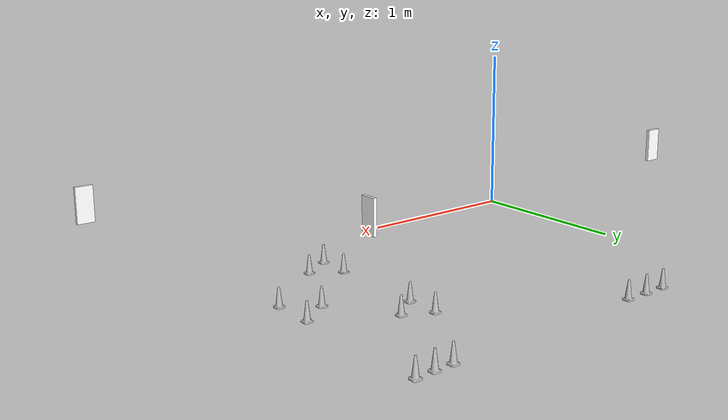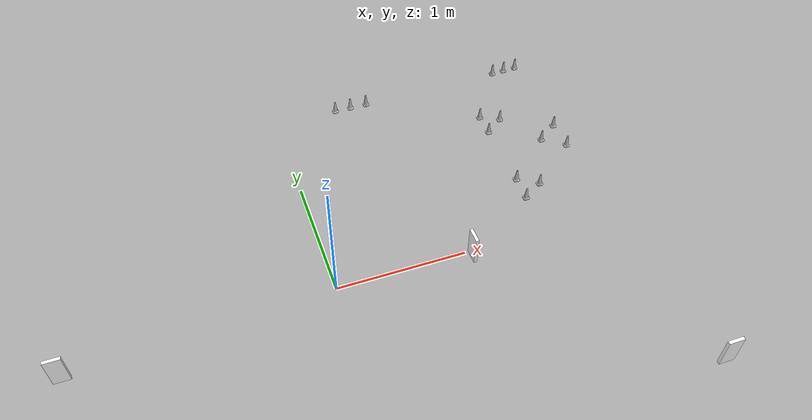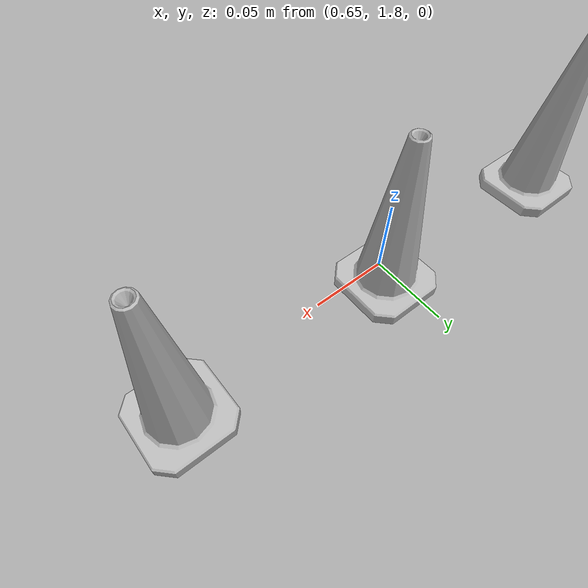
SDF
<sdf version="1.10">
 <world name="course">
  <physics name="5ms" type="ignored">
   <max_step_size>0.005</max_step_size>
   <real_time_factor>1</real_time_factor>
   <collision_detector>bullet</collision_detector>
  </physics>
  <plugin filename="gz-sim-physics-system" name="gz::sim::systems::Physics"/>
  <plugin filename="gz-sim-user-commands-system" name="gz::sim::systems::UserCommands"/>
  <plugin filename="gz-sim-scene-broadcaster-system" name="gz::sim::systems::SceneBroadcaster"/>
  <scene>
   <ambient>0 0 0 1</ambient>
   <shadows>false</shadows>
   <grid>false</grid>
   <background>0.7 0.7 0.7 1</background>
  </scene>
  <include>
   <uri>model://traffic_intersection</uri>
   <name>traffic_intersection</name>
   <pose>2.3336299999999999 -1.40002 0.085 -9.7413400000000006e-17 -2.4820500000000002e-19 1.62562e-19</pose>
  </include>
  <include>
   <uri>model://traffic_construction</uri>
   <name>traffic_construction</name>
   <pose>1.05383 -0.0175897 0.085 -4.1257000000000014e-17 1.1996600000000003e-17 1.57558</pose>
  </include>
  <include>
   <uri>model://traffic_tunnel</uri>
   <name>traffic_tunnel</name>
   <pose>-1.9097838401794434 -0.11091999709606171 0.12549911199274189 -1.9671940502690238e-17 1.4340378748803109e-17 8.606726298581117e-20</pose>
  </include>
  <include>
   <uri>model://construction_cone</uri>
   <name>Construction Cone</name>
   <pose>1.6625471444775399 0.35180949121572486 0.00049997042167031897 -2.3730390936853022e-08 2.0453555812070379e-07 -8.7337071684102304e-12</pose>
  </include>
  <include>
   <uri>model://construction_cone</uri>
   <name>Construction Cone_1</name>
   <pose>1.8292810472716363 0.45376952561444006 0.00049997042167031994 -2.3730390822866048e-08 2.0453555820684654e-07 -7.1624193041882732e-12</pose>
  </include>
  <include>
   <uri>model://construction_cone</uri>
   <name>Construction Cone_2</name>
   <pose>1.6724756926309028 0.55556503726647699 0.00049997042167031908 -2.3730390912775724e-08 2.0453555814121695e-07 -7.1624553181411475e-12</pose>
  </include>
  <include>
   <uri>model://construction_cone</uri>
   <name>Construction Cone_3</name>
   <pose>2.2321410719036336 0.77797254368942492 0.00049997042167032049 -2.3730390850711605e-08 2.0453555819021243e-07 -7.1624148509742741e-12</pose>
  </include>
  <include>
   <uri>model://construction_cone</uri>
   <name>Construction Cone_4</name>
   <pose>2.0611064285082574 0.90328711853555543 0.00049997042167031918 -2.3730390888674811e-08 2.0453555815651312e-07 -8.7336106969249161e-12</pose>
  </include>
  <include>
   <uri>model://construction_cone</uri>
   <name>Construction Cone_5</name>
   <pose>2.2323140317682704 1.0259881221709592 0.00049997042167031886 -2.3730390911907343e-08 2.0453555814353991e-07 -7.1628307901549126e-12</pose>
  </include>
  <include>
   <uri>model://construction_cone</uri>
   <name>Construction Cone_6</name>
   <pose>1.6783542882532032 1.1321612537887202 0.00049997042167031918 -2.3730390911782346e-08 2.045355581394877e-07 -7.1628307906690078e-12</pose>
  </include>
  <include>
   <uri>model://construction_cone</uri>
   <name>Construction Cone_7</name>
   <pose>1.8303921966860222 1.2472302855746062 0.00049997042167031799 -2.3730390991556399e-08 2.0453555808433379e-07 -7.1628307916937957e-12</pose>
  </include>
  <include>
   <uri>model://construction_cone</uri>
   <name>Construction Cone_8</name>
   <pose>1.6775725022245105 1.3249937891979364 0.00049997042167031832 -2.3730390922586595e-08 2.0453555813240058e-07 -7.1628307909071284e-12</pose>
  </include>
  <include>
   <uri>model://construction_cone</uri>
   <name>Construction Cone_9</name>
   <pose>2.2391107472537808 1.8408769892124295 0.00049997042167032005 -2.3730390840311099e-08 2.0453555819727856e-07 -8.7056314269593218e-12</pose>
  </include>
  <include>
   <uri>model://construction_cone</uri>
   <name>Construction Cone_10</name>
   <pose>2.1250157388787825 1.8340504633298864 0.00049997042167031799 -2.3730390974818207e-08 2.0453555809861196e-07 -8.7336107655624924e-12</pose>
  </include>
  <include>
   <uri>model://construction_cone</uri>
   <name>Construction Cone_11</name>
   <pose>2.0147393311631889 1.8297595240803217 0.00049997042167031951 -2.3730390892365419e-08 2.045355581460809e-07 -8.7336107660203935e-12</pose>
  </include>
  <include>
   <uri>model://construction_cone</uri>
   <name>Construction Cone_12</name>
   <pose>0.79891082444440908 1.8094877061607877 0.00049997042167031973 -2.373039083303137e-08 2.0453555819233959e-07 -7.1628309275240748e-12</pose>
  </include>
  <include>
   <uri>model://construction_cone</uri>
   <name>Construction Cone_13</name>
   <pose>0.65755653113828638 1.8118040279535674 0.00049997042167031973 -2.373039084899135e-08 2.0453555817817196e-07 -7.1628309274339194e-12</pose>
  </include>
  <include>
   <uri>model://construction_cone</uri>
   <name>Construction Cone_14</name>
   <pose>0.52178383449476873 1.8121221683869246 0.0004999704216703194 -2.3730390858170749e-08 2.0453555818381839e-07 -8.7333557087877312e-12</pose>
  </include>
  <light name="sun" type="directional">
   <pose>0 0 10 0 0 0</pose>
   <intensity>1</intensity>
   <direction>-0.5 0.1 -0.9</direction>
   <diffuse>0.8 0.8 0.8 1</diffuse>
   <specular>0.2 0.2 0.2 1</specular>
   <attenuation>
    <range>1000</range>
    <linear>0.01</linear>
    <constant>0.9</constant>
    <quadratic>0.001</quadratic>
   </attenuation>
   <spot><inner_angle>0</inner_angle><outer_angle>0</outer_angle><falloff>0</falloff></spot>
  </light>
  <light name="user_point_light_1" type="point">
   <pose>-1.648146 0.604519 1 0 0 0</pose>
   <cast_shadows>false</cast_shadows>
   <intensity>1</intensity>
   <direction>0 0 -1</direction>
   <diffuse>0.5 0.5 0.5 1</diffuse>
   <specular>0.1 0.1 0.1 1</specular>
   <attenuation>
    <range>20</range>
    <linear>0.01</linear>
    <constant>0.5</constant>
    <quadratic>0.001</quadratic>
   </attenuation>
   <spot><inner_angle>0</inner_angle><outer_angle>0</outer_angle><falloff>0</falloff></spot>
  </light>
  <light name="user_point_light_2" type="point">
   <pose>1.63854 1.69565 1 0 0 0</pose>
   <cast_shadows>false</cast_shadows>
   <intensity>1</intensity>
   <direction>0 0 -1</direction>
   <diffuse>0.5 0.5 0.5 1</diffuse>
   <specular>0.1 0.1 0.1 1</specular>
   <attenuation>
    <range>20</range>
    <linear>0.01</linear>
    <constant>0.5</constant>
    <quadratic>0.001</quadratic>
   </attenuation>
   <spot><inner_angle>0</inner_angle><outer_angle>0</outer_angle><falloff>0</falloff></spot>
  </light>
  <light name="user_point_light_3" type="point">
   <pose>0.42 -3.31 1 0 0 0</pose>
   <cast_shadows>false</cast_shadows>
   <intensity>1</intensity>
   <direction>0 0 -1</direction>
   <diffuse>0.5 0.5 0.5 1</diffuse>
   <specular>0.1 0.1 0.1 1</specular>
   <attenuation>
    <range>20</range>
    <linear>0.01</linear>
    <constant>0.5</constant>
    <quadratic>0.001</quadratic>
   </attenuation>
   <spot><inner_angle>0</inner_angle><outer_angle>0</outer_angle><falloff>0</falloff></spot>
  </light>
 </world>
</sdf>

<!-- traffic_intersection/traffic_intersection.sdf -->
<sdf version="1.5">
  <model name="traffic_intersection">
    <link name="box">
      <collision name="collision">
        <geometry>
          <box>
            <size>0.12 0.025 0.20</size>
          </box>
        </geometry>
      </collision>
      <visual name="visual">
        <geometry>
          <box>
            <size>0.12 0.025 0.25</size>
          </box>
        </geometry>
        <material>
        <diffuse>1.0 1.0 1.0</diffuse>
        <specular>1.0 1.0 1.0</specular>
          <pbr>
            <metal>
              <albedo_map>traffic_intersection.png</albedo_map>
            </metal>
          </pbr>
        </material>
      </visual>
    </link>
  </model>
</sdf>

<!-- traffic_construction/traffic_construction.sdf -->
<sdf version="1.5">
  <model name="traffic_construction">
    <link name="box">
      <collision name="collision">
        <geometry>
          <box>
            <size>0.12 0.025 0.25</size>
          </box>
        </geometry>
      </collision>
      <visual name="visual">
        <geometry>
          <box>
            <size>0.12 0.025 0.25</size>
          </box>
        </geometry>
        <material>
        <diffuse>1.0 1.0 1.0</diffuse>
        <specular>1.0 1.0 1.0</specular>
          <pbr>
            <metal>
              <albedo_map>traffic_construction.png</albedo_map>
            </metal>
          </pbr>
        </material>
      </visual>
    </link>
  </model>
</sdf>

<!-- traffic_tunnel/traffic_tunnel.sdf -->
<sdf version="1.5">
  <model name="traffic_tunnel">
    <link name="box">
      <collision name="collision">
        <geometry>
          <box>
            <size>0.12 0.025 0.25</size>
          </box>
        </geometry>
      </collision>
      <visual name="visual">
        <geometry>
          <box>
            <size>0.12 0.025 0.25</size>
          </box>
        </geometry>
        <material>
        <diffuse>1.0 1.0 1.0</diffuse>
        <specular>1.0 1.0 1.0</specular>
          <pbr>
            <metal>
              <albedo_map>tunnel.png</albedo_map>
            </metal>
          </pbr>
        </material>
      </visual>
    </link>
  </model>
</sdf>

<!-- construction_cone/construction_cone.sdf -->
<sdf version="1.5">
  <model name="Construction Cone">
    <link name="link">
      <collision name="collision">
        <geometry>
          <mesh>
            <scale>1 1 1</scale>
            <uri>model://construction_cone/construction_cone.dae</uri>
          </mesh>
        </geometry>
      </collision>
      <visual name="visual">
        <geometry>
          <mesh>
            <scale>1 1 1</scale>
            <uri>model://construction_cone/construction_cone.dae</uri>
          </mesh>
        </geometry>
      </visual>
    </link>
  </model>
</sdf>
